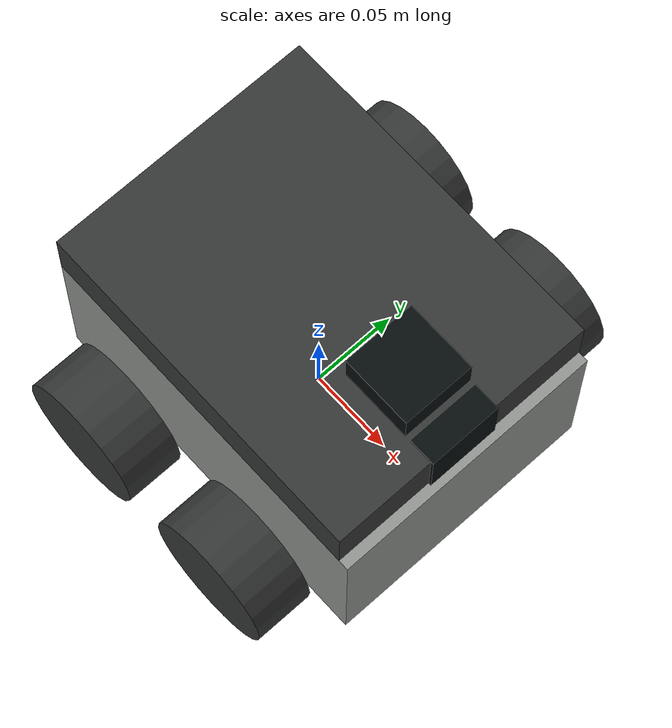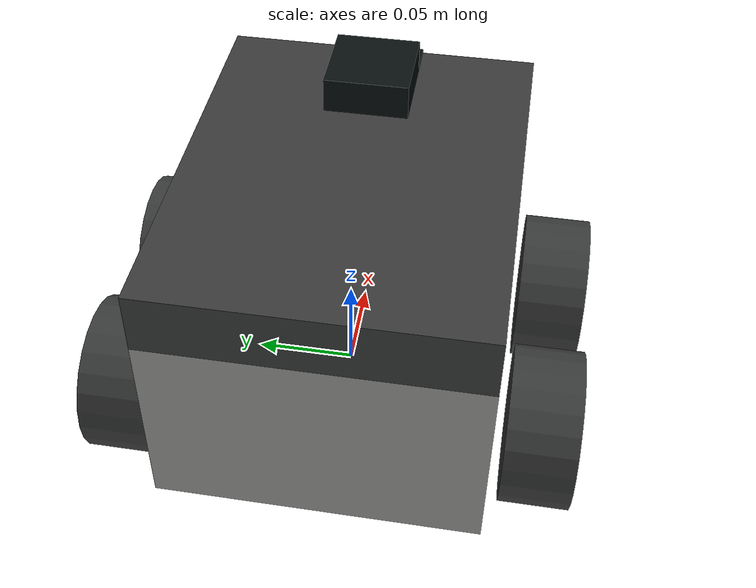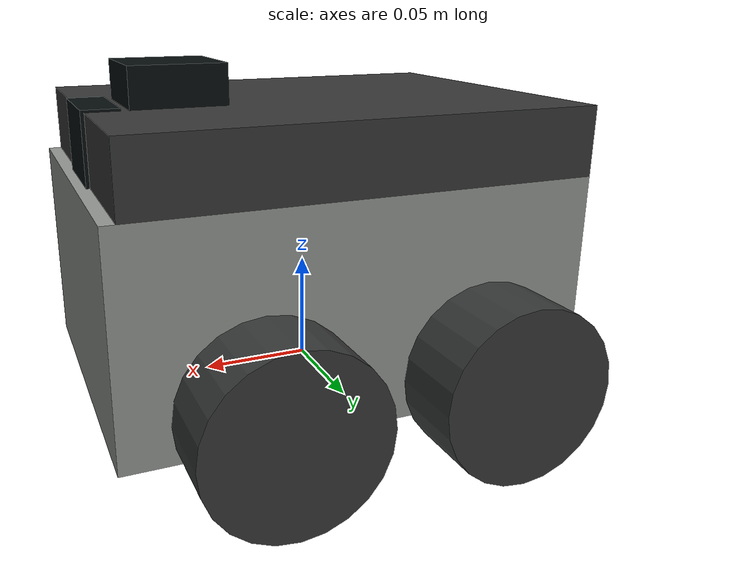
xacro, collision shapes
<?xml version="1.0" encoding="utf-8"?>
<robot name="akros2_mecanum" xmlns:xacro="http://ros.org/wiki/xacro">
<xacro:include filename="$(find akros2_description)/urdf/akros2_mecanum/robot.common.xacro"/>
<xacro:include filename="$(find akros2_description)/urdf/akros2_mecanum/robot.control.xacro"/>
<xacro:include filename="$(find akros2_description)/urdf/akros2_mecanum/robot.gazebo.xacro"/>

<xacro:arg name="mesh_path_mecanum" default="package://akros2_description/meshes/akros2_mecanum/" /> <!-- HTTPS URL also works here -->
<xacro:arg name="nopath" default="false" />
<xacro:property name="mesh_path" value="$(arg mesh_path_mecanum)" />

<xacro:if value="$(arg nopath)">
  <xacro:property name="mesh_path" value="" />
</xacro:if>

<!-- **** LINKS **** -->

<!-- BASE_LINK -->
<link name="base_link">
  <visual>
    <origin xyz="0 0 0" rpy="0 0 0" />
    <geometry>
      <mesh filename="${mesh_path}base_module.stl" />
    </geometry>
    <material name="BaseLinkColor"/>
  </visual>
  <collision>
    <origin xyz="${base_offset_x/2} 0 ${base_height/2}" rpy="0 0 0" />
    <geometry>
      <box size="${base_length} ${base_width} ${base_height}"/>
    </geometry>
  </collision>
</link>

<!-- BASE_LINK_INERTIAL (WORKAROUND FOR KDL WHICH DOES NOT ACCEPT BASE_LINK WITH INERTIA) -->
<link name="base_link_inertial">
  <inertial>
    <origin xyz="0 0 0" rpy="0 0 0" />
    <mass value="${base_mass}"/>
    <xacro:box_inertia m="${base_mass}" x="${base_length}" y="${base_width}" z="${base_height}"/>
  </inertial>
</link>

<!-- BASE_FOOTPRINT -->
<link name="base_footprint"/>

<!-- NAV_LINK -->
<link name="nav_link">
  <inertial>
    <mass value="${nav_mass}" />
    <xacro:box_inertia m="${nav_mass}" x="${nav_length}" y="${nav_width}" z="${nav_height}"/>
  </inertial>
  <visual>
    <origin xyz="0 0 ${nav_offset_z}" rpy="0 0 0" />
    <geometry>
      <mesh filename="${mesh_path}navigation_module.stl" />
    </geometry>
    <material name="WheelsNavColor"/>
  </visual>
  <collision>
    <origin xyz="0 0 ${nav_height/2}" rpy="0 0 0" />
    <geometry>
      <box size="${nav_length} ${nav_width} ${nav_height}"/>
    </geometry>
  </collision>
</link>

<!-- LD06 LASER_LINK -->
<link name="laser_link">
  <inertial>
    <origin xyz="0 0 0" rpy="0 0 0" />
    <mass value="${laser_mass}" />
    <xacro:box_inertia m="${laser_mass}" x="${laser_length}" y="${laser_width}" z="${laser_height}"/>
  </inertial>
  <visual>
    <origin xyz="0 0 0" rpy="0 0 ${-1*pi_by_two}" />
    <geometry>
      <mesh filename="${mesh_path}ld06.stl" />
    </geometry>
    <material name="SensorColor"/>
  </visual>
  <collision>
    <origin xyz="0 0 ${laser_height/2}" rpy="0 0 ${-1*pi_by_two}" />
    <geometry>
      <box size="${laser_length} ${laser_width} ${laser_height}"/>
    </geometry>
  </collision>
</link>

<!-- LASER_FRAME -->
<link name="laser_frame"/>

<!-- USB CAMERA MODULE CAM_LINK -->
<link name="cam_link">
  <inertial>
    <origin xyz="0 0 0" rpy="0 0 0" />
    <mass value="${cam_mass}" />
    <xacro:box_inertia m="${cam_mass}" x="${cam_length}" y="${cam_width}" z="${cam_height}"/>
  </inertial>
  <visual>
    <origin xyz="0 0 0" rpy="0 0 0" />
    <geometry>
      <mesh filename="${mesh_path}cam_module.stl" />
    </geometry>
    <material name="SensorColor"/>
  </visual>
  <collision>
    <origin xyz="${cam_length/2} 0 0" rpy="0 0 0" />
    <geometry>
      <box size="${cam_length} ${laser_width} ${laser_height}"/>
    </geometry>
  </collision>
</link>

<!-- USB CAMERA OPTICAL FRAME CAM_FRAME -->
<link name="cam_frame"/>

<!-- MPU9250 IMU_LINK -->
<link name="imu_link"/>

<!-- WHEEL LEFT FRONT -->
<link name="wheel_lf">
  <inertial>
    <mass value="${wheel_mass}"/>
    <xacro:cylinder_inertia m="${wheel_mass}" r="${wheel_radius}" h="${wheel_thickness}"/>
  </inertial>
  <visual>
    <origin xyz="0 0 0" rpy="0 0 0" />
    <geometry>
      <mesh filename="${mesh_path}wheel_lf.stl" />
    </geometry>
    <material name="WheelsNavColor"/>
  </visual>
  <collision>
    <origin xyz="0 ${wheel_thickness/2} 0" rpy="${pi_by_two} 0 0" />
    <geometry>
      <cylinder length="${wheel_thickness}" radius="${wheel_radius}"/>
    </geometry>
  </collision>
</link>

<!-- WHEEL LEFT BACK -->
<link name="wheel_lb">
  <inertial>
    <mass value="${wheel_mass}"/>
    <xacro:cylinder_inertia m="${wheel_mass}" r="${wheel_radius}" h="${wheel_thickness}"/>
  </inertial>
  <visual>
    <origin xyz="0 0 0" rpy="0 0 0" />
    <geometry>
      <mesh filename="${mesh_path}wheel_lb.stl" />
    </geometry>
    <material name="WheelsNavColor"/>
  </visual>
  <collision>
    <origin xyz="0 ${wheel_thickness/2} 0" rpy="${pi_by_two} 0 0" />
    <geometry>
      <cylinder length="${wheel_thickness}" radius="${wheel_radius}"/>
    </geometry>
  </collision>
</link>

<!-- WHEEL RIGHT FRONT -->
<link name="wheel_rf">
  <inertial>
    <mass value="${wheel_mass}"/>
    <xacro:cylinder_inertia m="${wheel_mass}" r="${wheel_radius}" h="${wheel_thickness}"/>
  </inertial>
  <visual>
    <origin xyz="0 0 0" rpy="0 0 0" />
    <geometry>
      <mesh filename="${mesh_path}wheel_rf.stl" />
    </geometry>
    <material name="WheelsNavColor"/>
  </visual>
  <collision>
    <origin xyz="0 ${-1*(wheel_thickness/2)} 0" rpy="${pi_by_two} 0 0" />
    <geometry>
      <cylinder length="${wheel_thickness}" radius="${wheel_radius}"/>
    </geometry>
  </collision>
</link>

<!-- WHEEL RIGHT BACK -->
<link name="wheel_rb">
  <inertial>
    <mass value="${wheel_mass}"/>
    <xacro:cylinder_inertia m="${wheel_mass}" r="${wheel_radius}" h="${wheel_thickness}"/>
  </inertial>
  <visual>
    <origin xyz="0 0 0" rpy="0 0 0" />
    <geometry>
      <mesh filename="${mesh_path}wheel_rb.stl" />
    </geometry>
    <material name="WheelsNavColor"/>
  </visual>
  <collision>
    <origin xyz="0 ${-1*(wheel_thickness/2)} 0" rpy="${pi_by_two} 0 0" />
    <geometry>
      <cylinder length="${wheel_thickness}" radius="${wheel_radius}"/>
    </geometry>
  </collision>
</link>

<!-- **** JOINTS **** -->

<!-- BASE_LINK_INERTIAL TO BASE_LINK -->
<joint name="base_inertial_fixed" type="fixed">
  <parent link="base_link"/>
  <child link="base_link_inertial"/>
  <origin xyz="0 0 0"/>
</joint>

<!-- BASE_FOOTPRINT TO BASE_LINK -->
<joint name="base_footprint_fixed" type="fixed">
  <parent link="base_link"/>
  <child link="base_footprint"/>
  <origin xyz="0 0 ${footprint_base_offset_z}"/>
</joint>

<!-- NAV_LINK TO BASE_LINK -->
<joint name="base_nav_fixed" type="fixed">
  <parent link="base_link"/>
  <child link="nav_link"/>
  <origin xyz="0 0 ${base_height}"/>
  <axis xyz="0 0 0"/>
</joint>

<!-- LASER_LINK TO NAV_LINK -->
<joint name="nav_laser_fixed" type="fixed">
  <parent link="nav_link"/>
  <child link="laser_link"/>
  <origin xyz="${nav_laser_offset_x} 0 ${nav_height/2}"/>
</joint>

<!-- LASER_FRAME TO LASER_LINK -->
<joint name="laser_frame_fixed" type="fixed">
  <parent link="laser_link"/>
  <child link="laser_frame"/>
  <origin xyz="0 0 ${laser_frame_offset_z}"/>
</joint>

<!-- CAM_LINK TO NAV_LINK -->
<joint name="nav_cam_fixed" type="fixed">
  <parent link="nav_link"/>
  <child link="cam_link"/>
  <origin xyz="${nav_cam_offset_x} 0 ${nav_cam_offset_z}"/>
</joint>

<!-- CAM_FRAME TO CAM_LINK -->
<joint name="cam_frame_fixed" type="fixed">
  <parent link="cam_link"/>
  <child link="cam_frame"/>
  <origin xyz="${cam_frame_offset_x} 0 0" rpy="${-1*pi_by_two} 0 ${-1*pi_by_two}"/>
</joint>

<!-- IMU_LINK TO BASE_LINK -->
<joint name="imu_base_fixed" type="fixed">
  <parent link="base_link"/>
  <child link="imu_link"/>
  <origin xyz="${imu_offset_x} 0 ${imu_offset_z}"/>
</joint>

<!-- WHEEL_LF TO BASE_LINK -->
<joint name="joint_lf" type="continuous">
  <parent link="base_link" />
  <child link="wheel_lf" />
  <origin xyz="${joint_offset_x} ${joint_offset_y} ${joint_offset_z}" rpy="0 0 0" />
  <axis xyz="0 1 0" />
</joint>

<!-- WHEEL_LB TO BASE_LINK -->
<joint name="joint_lb" type="continuous">
  <parent link="base_link" />
  <child link="wheel_lb" />
  <origin xyz="${-1*joint_offset_x} ${joint_offset_y} ${joint_offset_z}" rpy="0 0 0" />
  <axis xyz="0 1 0" />
</joint>

<!-- WHEEL_RF TO BASE_LINK -->
<joint name="joint_rf" type="continuous">
  <parent link="base_link" />
  <child link="wheel_rf" />
  <origin xyz="${joint_offset_x} ${-1*joint_offset_y} ${joint_offset_z}" rpy="0 0 0" />
  <axis xyz="0 1 0" />
</joint>

<!-- WHEEL_RB TO BASE_LINK -->
<joint name="joint_rb" type="continuous">
  <parent link="base_link" />
  <child link="wheel_rb" />
  <origin xyz="${-1*joint_offset_x} ${-1*joint_offset_y} ${joint_offset_z}" rpy="0 0 0" />
  <axis xyz="0 1 0" />
</joint>

</robot>

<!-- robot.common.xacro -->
<robot name="mecanum_common" xmlns:xacro="http://ros.org/wiki/xacro">
<!-- All values below are based on the CAD model (Fusion 360). 2mm added on each side (4mm total) for length and width (but not height) as padding. -->

<xacro:property name="pi_by_two" value="1.5707963" />

<xacro:property name="base_mass" value="2.0" /> <!-- Guesstimate, needs to be measured -->
<xacro:property name="base_length" value="0.21038" /> <!-- Actual length without padding = 0.20638. Change to 0.21038 to include screw heads in collision (without padding). -->
<xacro:property name="base_width" value="0.1585" /> <!-- Actual width without padding = 0.1545 without screw heads. Change to 0.2 to include motor shafts and emergency button (without padding)-->
<xacro:property name="base_height" value="0.099" />
<xacro:property name="base_offset_x" value="0.006" />

<xacro:property name="nav_offset_z" value="-0.099" />
<xacro:property name="nav_mass" value="0.5" /> <!-- Guesstimate, needs to be measured -->
<xacro:property name="nav_length" value="0.2044" /> <!-- Actual length without padding = 0.2004 -->
<xacro:property name="nav_width" value="0.1585" /> <!-- Actual width without padding = 0.1545-->
<xacro:property name="nav_height" value="0.03065" />

<xacro:property name="imu_offset_x" value="0.0562" />
<xacro:property name="imu_offset_z" value="0.094" />

<xacro:property name="laser_mass" value="0.12" />
<xacro:property name="laser_length" value="0.042" /> <!-- Actual length without padding = 0.038 -->
<xacro:property name="laser_width" value="0.0421" /> <!-- Actual width without padding = 0.0381 -->
<xacro:property name="laser_height" value="0.033"/>

<xacro:property name="cam_mass" value="0.025" />
<xacro:property name="cam_length" value="0.0161" /> <!-- Actual length without padding = 0.0121 -->
<xacro:property name="cam_width" value="0.0730" /> <!-- Actual width without padding = 0.0690 -->
<xacro:property name="cam_height" value="0.01" />

<xacro:property name="wheel_radius" value="0.0385" /> <!-- Actual radius = 0.0385, CAD radius = 0.036 -->
<xacro:property name="wheel_mass" value="0.075" /> <!-- Guesstimate, needs to be measured -->
<xacro:property name="wheel_thickness" value="0.034" /> <!-- Actual thickness = 0.034, CAD thickness = 0.0315 -->

<xacro:property name="footprint_base_offset_z" value="-0.017877" /> <!-- Actual offset = -0.017877, CAD offset = -0.015377 -->
<xacro:property name="nav_laser_offset_x" value="0.0632" />
<xacro:property name="laser_frame_offset_z" value="0.0255" />
<xacro:property name="nav_cam_offset_x" value="0.0877" />
<xacro:property name="nav_cam_offset_z" value="0.01525" />
<xacro:property name="cam_frame_offset_x" value="0.0065" />

<xacro:property name="joint_offset_x" value="0.0495" />
<xacro:property name="joint_offset_y" value="0.0854225" />
<xacro:property name="joint_offset_z" value="0.021" />

<xacro:macro name="cylinder_inertia" params="m r h">
  <inertia  ixx="${m*(3*r*r+h*h)/12}" ixy = "0" ixz = "0"
            iyy="${m*(3*r*r+h*h)/12}" iyz = "0"
            izz="${m*r*r/2}" />
</xacro:macro>

<xacro:macro name="box_inertia" params="m x y z">
  <inertia  ixx="${m*(y*y+z*z)/12}" ixy = "0" ixz = "0"
            iyy="${m*(x*x+z*z)/12}" iyz = "0"
            izz="${m*(x*x+z*z)/12}" />
</xacro:macro>

<xacro:macro name="sphere_inertia" params="m r">
  <inertia  ixx="${2*m*r*r/5}" ixy = "0" ixz = "0"
            iyy="${2*m*r*r/5}" iyz = "0"
            izz="${2*m*r*r/5}" />
</xacro:macro>

<!-- colors from https://gist.github.com/naoki-mizuno/5e63a13597d5c5fe817c1600b829595e -->

<material name="SensorColor">
    <color rgba="0.027450980392156862 0.050980392156862744 0.050980392156862744 1.0" /> <!-- almostblack -->
</material>

<material name="WheelsNavColor">
    <color rgba="0.21176470588235294 0.21568627450980393 0.21568627450980393 1.0" /> <!-- darkgrey -->
</material>

<material name="BaseLinkColor">
    <color rgba="0.5725490196078431 0.5843137254901961 0.5686274509803921 1.0" /> <!-- grey -->
</material>

</robot>
